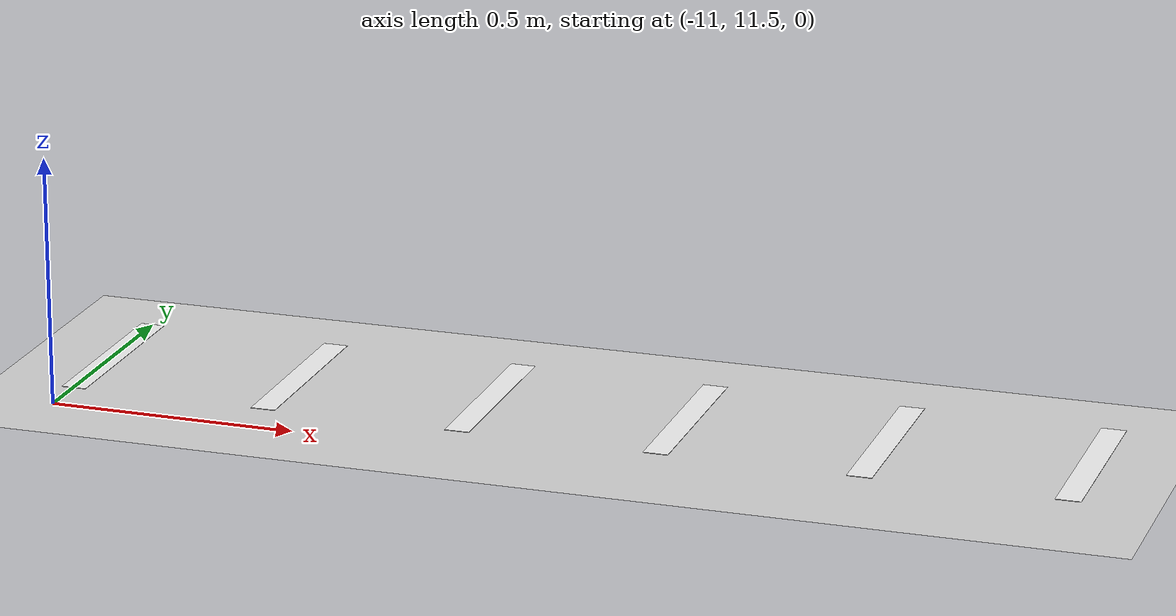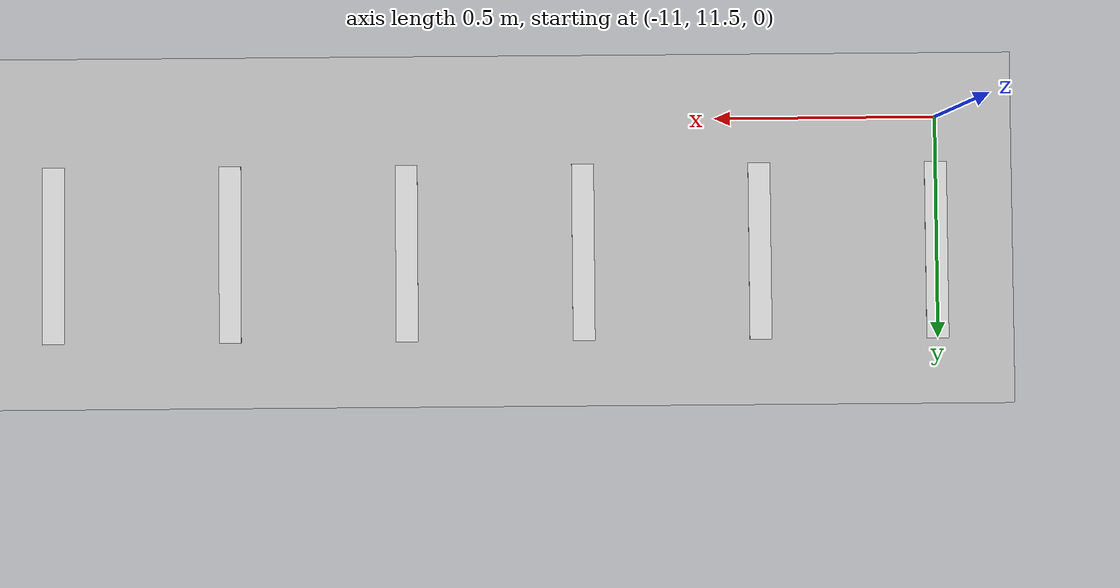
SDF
<sdf version="1.6">
 <world name="default">
  <model name="ground_plane">
   <static>1</static>
   <link name="link">
    <collision name="collision">
     <geometry><plane><normal>0 0 1</normal><size>100 100</size></plane></geometry>
     <surface><friction><ode><mu>100</mu><mu2>50</mu2></ode></friction></surface>
    </collision>
    <visual name="visual">
     <cast_shadows>0</cast_shadows>
     <geometry><plane><normal>0 0 1</normal><size>100 100</size></plane></geometry>
     <material>
      <script><uri>file://media/materials/scripts/gazebo.material</uri><name>Gazebo/Grey</name></script>
     </material>
    </visual>
   </link>
  </model>
  <model name="zebra_crossing_40cmx200cm_1">
   <link name="link_2">
    <inertial>
     <mass>1</mass>
     <inertia>
      <ixx>0.166667</ixx>
      <ixy>0</ixy>
      <ixz>0</ixz>
      <iyy>0.166667</iyy>
      <iyz>0</iyz>
      <izz>0.166667</izz>
     </inertia>
    </inertial>
    <visual name="ModelPreview_5::link_2::visual_1">
     <pose>-0.2 0 0 0 -0 0</pose>
     <geometry><box><size>0.05 0.4 0.001</size></box></geometry>
     <material>
      <lighting>1</lighting>
      <script><uri>file://media/materials/scripts/gazebo.material</uri><name>Gazebo/White</name></script>
     </material>
    </visual>
    <visual name="ModelPreview_5::link_2::visual_3">
     <pose>-0.6 0 0 0 -0 0</pose>
     <geometry><box><size>0.05 0.4 0.001</size></box></geometry>
     <material>
      <lighting>1</lighting>
      <script><uri>file://media/materials/scripts/gazebo.material</uri><name>Gazebo/White</name></script>
     </material>
    </visual>
    <visual name="ModelPreview_5::link_2::visual_4">
     <pose>1 0 0 0 -0 0</pose>
     <geometry><box><size>0.05 0.4 0.001</size></box></geometry>
     <material>
      <lighting>1</lighting>
      <script><uri>file://media/materials/scripts/gazebo.material</uri><name>Gazebo/White</name></script>
     </material>
    </visual>
    <visual name="visual">
     <pose>0.2 0 0 0 -0 0</pose>
     <geometry><box><size>0.05 0.4 0.001</size></box></geometry>
     <material>
      <lighting>1</lighting>
      <script><uri>file://media/materials/scripts/gazebo.material</uri><name>Gazebo/White</name></script>
     </material>
    </visual>
    <visual name="ModelPreview_5::link_2::visual_5">
     <pose>-1 0 0 0 -0 0</pose>
     <geometry><box><size>0.05 0.4 0.001</size></box></geometry>
     <material>
      <lighting>1</lighting>
      <script><uri>file://media/materials/scripts/gazebo.material</uri><name>Gazebo/White</name></script>
     </material>
    </visual>
    <visual name="ModelPreview_5::link_2::visual_2">
     <pose>0.6 0 0 0 -0 0</pose>
     <geometry><box><size>0.05 0.4 0.001</size></box></geometry>
     <material>
      <lighting>1</lighting>
      <script><uri>file://media/materials/scripts/gazebo.material</uri><name>Gazebo/White</name></script>
     </material>
    </visual>
    <collision name="collision_5">
     <pose>-1 0 0 0 -0 0</pose>
     <geometry><box><size>0.05 0.4 1e-05</size></box></geometry>
    </collision>
    <collision name="collision">
     <pose>0.2 0 0 0 -0 0</pose>
     <geometry><box><size>0.05 0.4 1e-05</size></box></geometry>
    </collision>
    <collision name="collision_3">
     <pose>-0.6 0 0 0 -0 0</pose>
     <geometry><box><size>0.05 0.4 1e-05</size></box></geometry>
    </collision>
    <collision name="collision_4">
     <pose>1 0 0 0 -0 0</pose>
     <geometry><box><size>0.05 0.4 1e-05</size></box></geometry>
    </collision>
    <collision name="collision_2">
     <pose>0.6 0 0 0 -0 0</pose>
     <geometry><box><size>0.05 0.4 1e-05</size></box></geometry>
    </collision>
    <collision name="collision_1">
     <pose>-0.2 0 0 0 -0 0</pose>
     <geometry><box><size>0.05 0.4 1e-05</size></box></geometry>
    </collision>
   </link>
   <static>1</static>
   <pose>-10 11.8 0 0 -0 0</pose>
  </model>
 </world>
</sdf>
